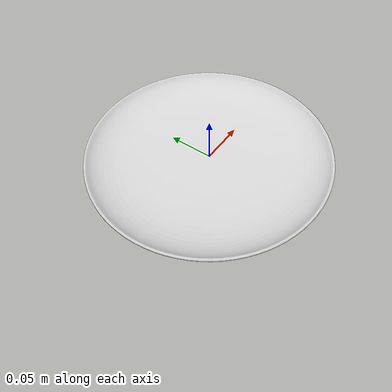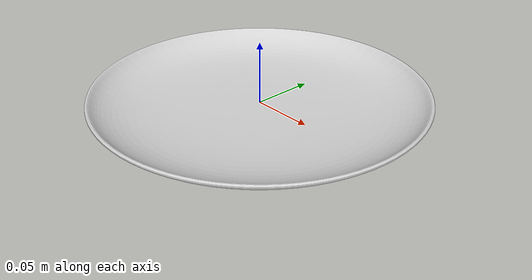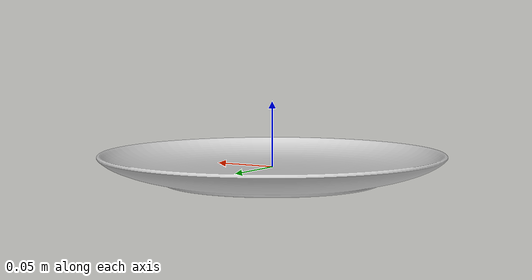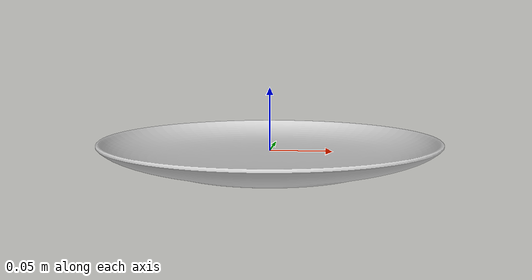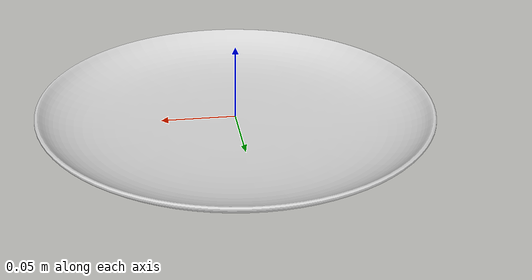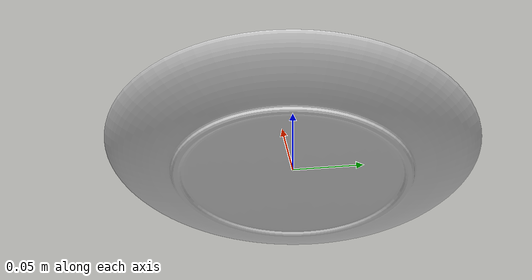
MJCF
<?xml version="1.0" ?>
<mujoco model="large_plate">
	<compiler meshdir="large_plate/meshes" texturedir="large_plate/textures" angle="radian" autolimits="true" balanceinertia="true" boundmass="0.000001" boundinertia="0.000001"/>
	<default>
		<default class="visual">
			<geom contype="0" conaffinity="0"/>
		</default>
		<default class="collision">
			<geom rgba="1.0 0.0 0.0 0.0"/>
		</default>
	</default>
	<asset>
		<mesh name="PlateLargeSize" file="stl/PlateLargeSize.stl" scale="1.0 1.0 1.0"/>
		<mesh name="PlateLargeSize_001" file="stl/PlateLargeSize_001.stl" scale="1.0 1.0 1.0"/>
		<mesh name="PlateLargeSize_002" file="stl/PlateLargeSize_002.stl" scale="1.0 1.0 1.0"/>
		<mesh name="PlateLargeSize_003" file="stl/PlateLargeSize_003.stl" scale="1.0 1.0 1.0"/>
		<mesh name="PlateLargeSize_004" file="stl/PlateLargeSize_004.stl" scale="1.0 1.0 1.0"/>
		<mesh name="PlateLargeSize_005" file="stl/PlateLargeSize_005.stl" scale="1.0 1.0 1.0"/>
		<mesh name="PlateLargeSize_006" file="stl/PlateLargeSize_006.stl" scale="1.0 1.0 1.0"/>
		<mesh name="PlateLargeSize_007" file="stl/PlateLargeSize_007.stl" scale="1.0 1.0 1.0"/>
		<mesh name="PlateLargeSize_008" file="stl/PlateLargeSize_008.stl" scale="1.0 1.0 1.0"/>
		<mesh name="PlateLargeSize_009" file="stl/PlateLargeSize_009.stl" scale="1.0 1.0 1.0"/>
		<mesh name="PlateLargeSize_010" file="stl/PlateLargeSize_010.stl" scale="1.0 1.0 1.0"/>
		<mesh name="PlateLargeSize_011" file="stl/PlateLargeSize_011.stl" scale="1.0 1.0 1.0"/>
		<mesh name="PlateLargeSize_012" file="stl/PlateLargeSize_012.stl" scale="1.0 1.0 1.0"/>
		<mesh name="PlateLargeSize_013" file="stl/PlateLargeSize_013.stl" scale="1.0 1.0 1.0"/>
		<mesh name="PlateLargeSize_014" file="stl/PlateLargeSize_014.stl" scale="1.0 1.0 1.0"/>
		<mesh name="PlateLargeSize_015" file="stl/PlateLargeSize_015.stl" scale="1.0 1.0 1.0"/>
		<mesh name="PlateLargeSize_016" file="stl/PlateLargeSize_016.stl" scale="1.0 1.0 1.0"/>
		<mesh name="PlateLargeSize_017" file="stl/PlateLargeSize_017.stl" scale="1.0 1.0 1.0"/>
		<mesh name="PlateLargeSize_018" file="stl/PlateLargeSize_018.stl" scale="1.0 1.0 1.0"/>
		<mesh name="PlateLargeSize_019" file="stl/PlateLargeSize_019.stl" scale="1.0 1.0 1.0"/>
		<mesh name="PlateLargeSize_020" file="stl/PlateLargeSize_020.stl" scale="1.0 1.0 1.0"/>
		<mesh name="PlateLargeSize_021" file="stl/PlateLargeSize_021.stl" scale="1.0 1.0 1.0"/>
		<mesh name="PlateLargeSize_022" file="stl/PlateLargeSize_022.stl" scale="1.0 1.0 1.0"/>
		<material name="M_PlateLargeSize" rgba="0.8098999857902527 0.8098999857902527 0.8098999857902527 1.0" emission="0.0"/>
	</asset>
	<worldbody>
		<body name="large_plate" pos="0.0 0.0 0.0" quat="1.0 0.0 0.0 0.0">
			<inertial mass="0.5154173970222473" pos="1.6775587585726726e-09 -8.307424792519669e-08 -0.003178010229021311" quat="-0.5229725241661072 1.5307165313060977e-08 3.7521878937241127e-08 0.8523495197296143" diaginertia="0.002286007860675454 0.0022860087919980288 0.004535621032118797"/>
			<geom name="PlateLargeSize" type="mesh" pos="0.0 0.0 0.0" quat="1.0 0.0 0.0 0.0" mesh="PlateLargeSize" material="M_PlateLargeSize" class="visual"/>
			<geom name="PlateLargeSize_001" type="mesh" pos="0.0 0.0 0.0" quat="1.0 0.0 0.0 0.0" mesh="PlateLargeSize_001" class="collision"/>
			<geom name="PlateLargeSize_002" type="mesh" pos="0.0 0.0 0.0" quat="1.0 0.0 0.0 0.0" mesh="PlateLargeSize_002" class="collision"/>
			<geom name="PlateLargeSize_003" type="mesh" pos="0.0 0.0 0.0" quat="1.0 0.0 0.0 0.0" mesh="PlateLargeSize_003" class="collision"/>
			<geom name="PlateLargeSize_004" type="mesh" pos="0.0 0.0 0.0" quat="1.0 0.0 0.0 0.0" mesh="PlateLargeSize_004" class="collision"/>
			<geom name="PlateLargeSize_005" type="mesh" pos="0.0 0.0 0.0" quat="1.0 0.0 0.0 0.0" mesh="PlateLargeSize_005" class="collision"/>
			<geom name="PlateLargeSize_006" type="mesh" pos="0.0 0.0 0.0" quat="1.0 0.0 0.0 0.0" mesh="PlateLargeSize_006" class="collision"/>
			<geom name="PlateLargeSize_007" type="mesh" pos="0.0 0.0 0.0" quat="1.0 0.0 0.0 0.0" mesh="PlateLargeSize_007" class="collision"/>
			<geom name="PlateLargeSize_008" type="mesh" pos="0.0 0.0 0.0" quat="1.0 0.0 0.0 0.0" mesh="PlateLargeSize_008" class="collision"/>
			<geom name="PlateLargeSize_009" type="mesh" pos="0.0 0.0 0.0" quat="1.0 0.0 0.0 0.0" mesh="PlateLargeSize_009" class="collision"/>
			<geom name="PlateLargeSize_010" type="mesh" pos="0.0 0.0 0.0" quat="1.0 0.0 0.0 0.0" mesh="PlateLargeSize_010" class="collision"/>
			<geom name="PlateLargeSize_011" type="mesh" pos="0.0 0.0 0.0" quat="1.0 0.0 0.0 0.0" mesh="PlateLargeSize_011" class="collision"/>
			<geom name="PlateLargeSize_012" type="mesh" pos="0.0 0.0 0.0" quat="1.0 0.0 0.0 0.0" mesh="PlateLargeSize_012" class="collision"/>
			<geom name="PlateLargeSize_013" type="mesh" pos="0.0 0.0 0.0" quat="1.0 0.0 0.0 0.0" mesh="PlateLargeSize_013" class="collision"/>
			<geom name="PlateLargeSize_014" type="mesh" pos="0.0 0.0 0.0" quat="1.0 0.0 0.0 0.0" mesh="PlateLargeSize_014" class="collision"/>
			<geom name="PlateLargeSize_015" type="mesh" pos="0.0 0.0 0.0" quat="1.0 0.0 0.0 0.0" mesh="PlateLargeSize_015" class="collision"/>
			<geom name="PlateLargeSize_016" type="mesh" pos="0.0 0.0 0.0" quat="1.0 0.0 0.0 0.0" mesh="PlateLargeSize_016" class="collision"/>
			<geom name="PlateLargeSize_017" type="mesh" pos="0.0 0.0 0.0" quat="1.0 0.0 0.0 0.0" mesh="PlateLargeSize_017" class="collision"/>
			<geom name="PlateLargeSize_018" type="mesh" pos="0.0 0.0 0.0" quat="1.0 0.0 0.0 0.0" mesh="PlateLargeSize_018" class="collision"/>
			<geom name="PlateLargeSize_019" type="mesh" pos="0.0 0.0 0.0" quat="1.0 0.0 0.0 0.0" mesh="PlateLargeSize_019" class="collision"/>
			<geom name="PlateLargeSize_020" type="mesh" pos="0.0 0.0 0.0" quat="1.0 0.0 0.0 0.0" mesh="PlateLargeSize_020" class="collision"/>
			<geom name="PlateLargeSize_021" type="mesh" pos="0.0 0.0 0.0" quat="1.0 0.0 0.0 0.0" mesh="PlateLargeSize_021" class="collision"/>
			<geom name="PlateLargeSize_022" type="mesh" pos="0.0 0.0 0.0" quat="1.0 0.0 0.0 0.0" mesh="PlateLargeSize_022" class="collision"/>
		</body>
	</worldbody>
	<equality/>
</mujoco>
